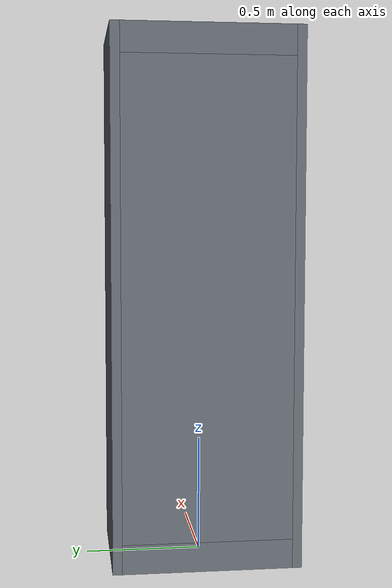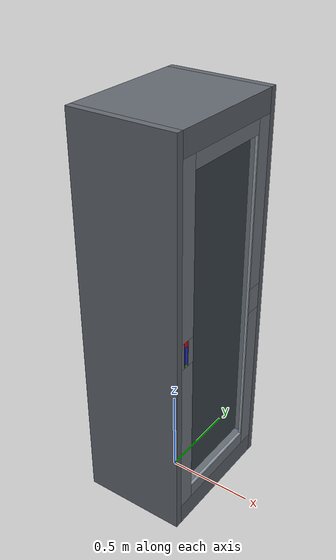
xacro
<?xml version="1.0"?>
<robot xmlns:xacro="http://www.ros.org/wiki/xacro" name="electrical_cabinet">
  <!-- The transparent URDF is the canonical geometry and physics template. -->
  <xacro:arg name="world_fixed" default="false"/>
  <xacro:include filename="electrical_cabinet.urdf"/>
  <xacro:if value="$(arg world_fixed)">
    <link name="cabinet_world"/>
    <joint name="electrical_cabinet_fixed_to_world" type="fixed">
      <parent link="cabinet_world"/>
      <child link="cabinet_base_link"/>
      <origin xyz="0 0 0" rpy="0 0 0"/>
    </joint>
  </xacro:if>
</robot>

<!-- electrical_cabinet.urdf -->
<robot name="electrical_cabinet">
  <link name="cabinet_base_link">
    <inertial>
      <origin rpy="0 0 0" xyz="0 0 0" />
      <mass value="80.0" />
      <inertia ixx="38.31733333333332" ixy="0.0" ixz="0.0" iyy="36.450666666666656" iyz="0.0" izz="6.666666666666667" />
    </inertial>
    <visual name="left_side_visual">
      <origin rpy="0 0 0" xyz="0 -0.38 1.13" />
      <geometry>
        <box size="0.6 0.040000000000000036 2.26" />
      </geometry>
      <material name="left_side_material">
        <color rgba="0.38 0.40 0.43 1.0" />
      </material>
    </visual>
    <collision name="left_side_collision">
      <origin rpy="0 0 0" xyz="0 -0.38 1.13" />
      <geometry>
        <box size="0.6 0.040000000000000036 2.26" />
      </geometry>
    </collision>
    <visual name="right_side_visual">
      <origin rpy="0 0 0" xyz="0 0.38 1.13" />
      <geometry>
        <box size="0.6 0.040000000000000036 2.26" />
      </geometry>
      <material name="right_side_material">
        <color rgba="0.38 0.40 0.43 1.0" />
      </material>
    </visual>
    <collision name="right_side_collision">
      <origin rpy="0 0 0" xyz="0 0.38 1.13" />
      <geometry>
        <box size="0.6 0.040000000000000036 2.26" />
      </geometry>
    </collision>
    <visual name="bottom_frame_visual">
      <origin rpy="0 0 0" xyz="0 0 0.0625" />
      <geometry>
        <box size="0.6 0.72 0.125" />
      </geometry>
      <material name="bottom_frame_material">
        <color rgba="0.38 0.40 0.43 1.0" />
      </material>
    </visual>
    <collision name="bottom_frame_collision">
      <origin rpy="0 0 0" xyz="0 0 0.0625" />
      <geometry>
        <box size="0.6 0.72 0.125" />
      </geometry>
    </collision>
    <visual name="top_frame_visual">
      <origin rpy="0 0 0" xyz="0 0 2.1975" />
      <geometry>
        <box size="0.6 0.72 0.125" />
      </geometry>
      <material name="top_frame_material">
        <color rgba="0.38 0.40 0.43 1.0" />
      </material>
    </visual>
    <collision name="top_frame_collision">
      <origin rpy="0 0 0" xyz="0 0 2.1975" />
      <geometry>
        <box size="0.6 0.72 0.125" />
      </geometry>
    </collision>
    <visual name="rear_wall_visual">
      <origin rpy="0 0 0" xyz="-0.29 0 1.13" />
      <geometry>
        <box size="0.02 0.72 2.01" />
      </geometry>
      <material name="rear_wall_material">
        <color rgba="0.38 0.40 0.43 1.0" />
      </material>
    </visual>
    <collision name="rear_wall_collision">
      <origin rpy="0 0 0" xyz="-0.29 0 1.13" />
      <geometry>
        <box size="0.02 0.72 2.01" />
      </geometry>
    </collision>
    <visual name="door_recess_back_visual">
      <origin rpy="0 0 0" xyz="0.18999999999999997 0 1.13" />
      <geometry>
        <box size="0.02 0.72 2.01" />
      </geometry>
      <material name="door_recess_back_material">
        <color rgba="0.12 0.14 0.16 1.0" />
      </material>
    </visual>
    <collision name="door_recess_back_collision">
      <origin rpy="0 0 0" xyz="0.18999999999999997 0 1.13" />
      <geometry>
        <box size="0.02 0.72 2.01" />
      </geometry>
    </collision>
  </link>
  <link name="door_hinge_link">
    <inertial>
      <origin rpy="0 0 0" xyz="0 0 0" />
      <mass value="0.01" />
      <inertia ixx="1.666666666666667e-07" ixy="0.0" ixz="0.0" iyy="1.666666666666667e-07" iyz="0.0" izz="1.666666666666667e-07" />
    </inertial>
  </link>
  <link name="door_link">
    <inertial>
      <origin rpy="0 0 0" xyz="0 0 0" />
      <mass value="12.0" />
      <inertia ixx="4.558499999999999" ixy="0.0" ixz="0.0" iyy="4.040499999999999" iyz="0.0" izz="0.5187999999999999" />
    </inertial>
    <visual>
      <origin rpy="0 0 0" xyz="-0.0025 -0.3125 0" />
      <geometry>
        <box size="0.015 0.095 2.01" />
      </geometry>
      <material name="door_core_material">
        <color rgba="0.58 0.60 0.63 1.0" />
      </material>
    </visual>
    <visual>
      <origin rpy="0 0 0" xyz="-0.0025 0.3125 0" />
      <geometry>
        <box size="0.015 0.095 2.01" />
      </geometry>
      <material name="door_core_material">
        <color rgba="0.58 0.60 0.63 1.0" />
      </material>
    </visual>
    <visual>
      <origin rpy="0 0 0" xyz="-0.0025 0 -0.9665" />
      <geometry>
        <box size="0.015 0.53 0.077" />
      </geometry>
      <material name="door_core_material">
        <color rgba="0.58 0.60 0.63 1.0" />
      </material>
    </visual>
    <visual>
      <origin rpy="0 0 0" xyz="-0.0025 0 0.9665" />
      <geometry>
        <box size="0.015 0.53 0.077" />
      </geometry>
      <material name="door_core_material">
        <color rgba="0.58 0.60 0.63 1.0" />
      </material>
    </visual>
    <visual>
      <origin rpy="0 0 0" xyz="0.0075 -0.3125 -0.54" />
      <geometry>
        <box size="0.005 0.095 0.93" />
      </geometry>
      <material name="door_skin_bottom_material">
        <color rgba="0.47 0.49 0.52 1.0" />
      </material>
    </visual>
    <visual>
      <origin rpy="0 0 0" xyz="0.0075 0.3125 -0.54" />
      <geometry>
        <box size="0.005 0.095 0.93" />
      </geometry>
      <material name="door_skin_bottom_material">
        <color rgba="0.47 0.49 0.52 1.0" />
      </material>
    </visual>
    <visual>
      <origin rpy="0 0 0" xyz="0.0075 0 -0.9665" />
      <geometry>
        <box size="0.005 0.53 0.077" />
      </geometry>
      <material name="door_skin_bottom_material">
        <color rgba="0.47 0.49 0.52 1.0" />
      </material>
    </visual>
    <visual>
      <origin rpy="0 0 0" xyz="0.0075 -0.3125 0.54" />
      <geometry>
        <box size="0.005 0.095 0.93" />
      </geometry>
      <material name="door_skin_top_material">
        <color rgba="0.47 0.49 0.52 1.0" />
      </material>
    </visual>
    <visual>
      <origin rpy="0 0 0" xyz="0.0075 0.3125 0.54" />
      <geometry>
        <box size="0.005 0.095 0.93" />
      </geometry>
      <material name="door_skin_top_material">
        <color rgba="0.47 0.49 0.52 1.0" />
      </material>
    </visual>
    <visual>
      <origin rpy="0 0 0" xyz="0.0075 0 0.9665" />
      <geometry>
        <box size="0.005 0.53 0.077" />
      </geometry>
      <material name="door_skin_top_material">
        <color rgba="0.47 0.49 0.52 1.0" />
      </material>
    </visual>
    <visual>
      <origin rpy="0 0 0" xyz="0.0075 -0.35 0" />
      <geometry>
        <box size="0.005 0.02 0.15" />
      </geometry>
      <material name="door_skin_left_material">
        <color rgba="0.47 0.49 0.52 1.0" />
      </material>
    </visual>
    <visual>
      <origin rpy="0 0 0" xyz="0.0075 -0.285 0" />
      <geometry>
        <box size="0.005 0.04 0.15" />
      </geometry>
      <material name="door_skin_right_material">
        <color rgba="0.47 0.49 0.52 1.0" />
      </material>
    </visual>
    <visual>
      <origin rpy="0 0 0" xyz="0.0075 0.3125 0" />
      <geometry>
        <box size="0.005 0.095 0.15" />
      </geometry>
      <material name="door_skin_right_material">
        <color rgba="0.47 0.49 0.52 1.0" />
      </material>
    </visual>
  </link>
  <joint name="door_hinge_joint" type="revolute">
    <parent link="cabinet_base_link" />
    <child link="door_hinge_link" />
    <origin rpy="0 0 0" xyz="0.29 0.36 1.13" />
    <axis xyz="0 0 1" />
    <limit effort="100" lower="-0.0001" upper="1.57079632679" velocity="1.0" />
    <dynamics damping="1.0" friction="0.1" />
  </joint>
  <joint name="door_mount_joint" type="fixed">
    <parent link="door_hinge_link" />
    <child link="door_link" />
    <origin rpy="0 0 0" xyz="0 -0.36 0" />
  </joint>
  <link name="lock_cavity_link">
    <inertial>
      <origin rpy="0 0 0" xyz="0 0 0" />
      <mass value="0.05" />
      <inertia ixx="6.166666666666667e-05" ixy="0.0" ixz="0.0" iyy="6.0004166666666664e-05" iyz="0.0" izz="1.6708333333333336e-06" />
    </inertial>
    <visual name="lock_cavity_back_visual">
      <origin rpy="0 0 0" xyz="0 0 0" />
      <geometry>
        <box size="0.001 0.02 0.12" />
      </geometry>
      <material name="lock_cavity_back_material">
        <color rgba="0.12 0.14 0.16 1.0" />
      </material>
    </visual>
  </link>
  <joint name="lock_cavity_mount_joint" type="fixed">
    <parent link="door_link" />
    <child link="lock_cavity_link" />
    <origin rpy="0 0 0" xyz="0.0055 -0.32249999999999995 -0.015" />
  </joint>
  <link name="lock_frame_link">
    <inertial>
      <origin rpy="0 0 0" xyz="0 0 0" />
      <mass value="0.15" />
      <inertia ixx="0.0002965625" ixy="0.0" ixz="0.0" iyy="0.00028136249999999996" iyz="0.0" izz="1.5425e-05" />
    </inertial>
    <visual name="lock_frame_left_visual">
      <origin rpy="0 0 0" xyz="0 -0.013750000000000002 0" />
      <geometry>
        <box size="0.003 0.0075000000000000015 0.15" />
      </geometry>
      <material name="lock_frame_left_material">
        <color rgba="0.95 0.05 0.05 1.0" />
      </material>
    </visual>
    <visual name="lock_frame_right_visual">
      <origin rpy="0 0 0" xyz="0 0.013750000000000002 0" />
      <geometry>
        <box size="0.003 0.0075000000000000015 0.15" />
      </geometry>
      <material name="lock_frame_right_material">
        <color rgba="0.95 0.05 0.05 1.0" />
      </material>
    </visual>
    <visual name="lock_frame_top_visual">
      <origin rpy="0 0 0" xyz="0 0 0.06" />
      <geometry>
        <box size="0.003 0.02 0.03" />
      </geometry>
      <material name="lock_frame_top_material">
        <color rgba="0.95 0.05 0.05 1.0" />
      </material>
    </visual>
  </link>
  <joint name="lock_frame_mount_joint" type="fixed">
    <parent link="door_link" />
    <child link="lock_frame_link" />
    <origin rpy="0 0 0" xyz="0.0065 -0.32249999999999995 0" />
  </joint>
  <link name="lock_button_link">
    <inertial>
      <origin rpy="0 0 0" xyz="0.003 0 0" />
      <mass value="0.03" />
      <inertia ixx="1.5624999999999999e-06" ixy="0.0" ixz="0.0" iyy="6.25e-07" iyz="0.0" izz="1.0625e-06" />
    </inertial>
    <visual name="lock_button_visual">
      <origin rpy="0 0 0" xyz="0.003 0 0" />
      <geometry>
        <box size="0.005 0.02 0.015" />
      </geometry>
      <material name="lock_button_material">
        <color rgba="0.20 0.85 0.05 1.0" />
      </material>
    </visual>
  </link>
  <joint name="button_press_joint" type="revolute">
    <parent link="door_link" />
    <child link="lock_button_link" />
    <origin rpy="0 0 0" xyz="0.0045 -0.32249999999999995 -0.0675" />
    <axis xyz="0 0 1" />
    <limit effort="30" lower="-0.0001" upper="3.14159265359" velocity="8.0" />
    <dynamics damping="1.0" friction="0.1" />
  </joint>
  <link name="button_contact_sensor_link">
    <inertial>
      <origin rpy="0 0 0" xyz="0 0 0" />
      <mass value="0.001" />
      <inertia ixx="5.208333333333334e-08" ixy="0.0" ixz="0.0" iyy="1.8833333333333333e-08" iyz="0.0" izz="3.341666666666667e-08" />
    </inertial>
    <collision name="button_contact_pad_collision">
      <origin rpy="0 0 0" xyz="0 0 0" />
      <geometry>
        <box size="0.001 0.02 0.015" />
      </geometry>
    </collision>
  </link>
  <joint name="button_contact_sensor_mount_joint" type="fixed">
    <parent link="door_link" />
    <child link="button_contact_sensor_link" />
    <origin rpy="0 0 0" xyz="0.0235 -0.32249999999999995 -0.0675" />
  </joint>
  <link name="handle_pop_link">
    <inertial>
      <origin rpy="0 0 0" xyz="0 0 0" />
      <mass value="0.01" />
      <inertia ixx="6.666666666666667e-09" ixy="0.0" ixz="0.0" iyy="6.666666666666667e-09" iyz="0.0" izz="6.666666666666667e-09" />
    </inertial>
  </link>
  <joint name="handle_turn_joint" type="revolute">
    <parent link="door_link" />
    <child link="handle_pop_link" />
    <origin rpy="0 0 0" xyz="0.0075 -0.32249999999999995 0.045" />
    <axis xyz="1 0 0" />
    <limit effort="30" lower="-0.0001" upper="1.57079632679" velocity="2.0" />
    <dynamics damping="0.5" friction="0.05" />
  </joint>
  <link name="door_handle_link">
    <inertial>
      <origin rpy="0 0 0" xyz="0 0 -0.0525" />
      <mass value="0.1" />
      <inertia ixx="9.520833333333332e-05" ixy="0.0" ixz="0.0" iyy="9.208333333333333e-05" iyz="0.0" izz="3.541666666666667e-06" />
    </inertial>
    <visual name="door_handle_visual">
      <origin rpy="0 0 0" xyz="0 0 -0.0525" />
      <geometry>
        <box size="0.005 0.02 0.105" />
      </geometry>
      <material name="door_handle_material">
        <color rgba="0.02 0.25 0.95 1.0" />
      </material>
    </visual>
  </link>
  <joint name="handle_pop_joint" type="revolute">
    <parent link="handle_pop_link" />
    <child link="door_handle_link" />
    <origin rpy="0 0 0" xyz="0 0 0" />
    <axis xyz="0 1 0" />
    <limit effort="30" lower="-1.0471975512" upper="0.0001" velocity="2.0" />
    <dynamics damping="0.5" friction="0.05" />
  </joint>
  <link name="door_handle_grasp_frame" />
  <joint name="door_handle_grasp_frame_joint" type="fixed">
    <parent link="door_handle_link" />
    <child link="door_handle_grasp_frame" />
    <origin rpy="0 0 0" xyz="0 0 0" />
  </joint>
  <gazebo>
    <plugin filename="libgazebo_ros_control.so" name="gazebo_ros_control">
      <robotNamespace>/electrical_cabinet</robotNamespace>
      <robotSimType>gazebo_ros_control/DefaultRobotHWSim</robotSimType>
      <legacyModeNS>true</legacyModeNS>
    </plugin>
    <plugin filename="libelectrical_cabinet_kinematic_plugin.so" name="electrical_cabinet_kinematic_plugin" />
  </gazebo>
  <gazebo reference="cabinet_base_link">
    <gravity>false</gravity>
    <selfCollide>false</selfCollide>
    <material>Gazebo/DarkGrey</material>
  </gazebo>
  <gazebo reference="door_link">
    <gravity>false</gravity>
    <selfCollide>false</selfCollide>
    <material>Gazebo/Grey</material>
  </gazebo>
  <gazebo reference="door_hinge_link">
    <gravity>false</gravity>
    <selfCollide>false</selfCollide>
  </gazebo>
  <gazebo reference="lock_cavity_link">
    <gravity>false</gravity>
    <selfCollide>false</selfCollide>
    <material>Gazebo/Black</material>
  </gazebo>
  <gazebo reference="lock_frame_link">
    <gravity>false</gravity>
    <selfCollide>false</selfCollide>
    <material>Gazebo/Red</material>
  </gazebo>
  <gazebo reference="handle_pop_link">
    <gravity>false</gravity>
    <selfCollide>false</selfCollide>
  </gazebo>
  <gazebo reference="door_handle_link">
    <gravity>false</gravity>
    <selfCollide>false</selfCollide>
    <material>Gazebo/Blue</material>
  </gazebo>
  <gazebo reference="lock_button_link">
    <gravity>false</gravity>
    <selfCollide>false</selfCollide>
    <material>Gazebo/Green</material>
  </gazebo>
  <gazebo reference="button_contact_sensor_link">
    <gravity>false</gravity>
    <selfCollide>false</selfCollide>
    <sensor name="button_contact_sensor" type="contact">
      <always_on>true</always_on>
      <update_rate>100.0</update_rate>
      <contact>
        <collision>button_contact_pad_collision</collision>
      </contact>
      <plugin filename="libgazebo_ros_bumper.so" name="button_contact_bumper">
        <alwaysOn>true</alwaysOn>
        <updateRate>100.0</updateRate>
        <robotNamespace>/electrical_cabinet</robotNamespace>
        <frameName>lock_button_link</frameName>
        <bumperTopicName>button_contacts</bumperTopicName>
      </plugin>
    </sensor>
  </gazebo>
  <transmission name="door_hinge_joint_transmission">
    <type>transmission_interface/SimpleTransmission</type>
    <joint name="door_hinge_joint">
      <hardwareInterface>hardware_interface/PositionJointInterface</hardwareInterface>
    </joint>
    <actuator name="door_hinge_motor">
      <mechanicalReduction>1</mechanicalReduction>
    </actuator>
  </transmission>
  <transmission name="button_press_joint_transmission">
    <type>transmission_interface/SimpleTransmission</type>
    <joint name="button_press_joint">
      <hardwareInterface>hardware_interface/PositionJointInterface</hardwareInterface>
    </joint>
    <actuator name="button_press_motor">
      <mechanicalReduction>1</mechanicalReduction>
    </actuator>
  </transmission>
  <transmission name="handle_pop_joint_transmission">
    <type>transmission_interface/SimpleTransmission</type>
    <joint name="handle_pop_joint">
      <hardwareInterface>hardware_interface/PositionJointInterface</hardwareInterface>
    </joint>
    <actuator name="handle_pop_motor">
      <mechanicalReduction>1</mechanicalReduction>
    </actuator>
  </transmission>
  <transmission name="handle_turn_joint_transmission">
    <type>transmission_interface/SimpleTransmission</type>
    <joint name="handle_turn_joint">
      <hardwareInterface>hardware_interface/PositionJointInterface</hardwareInterface>
    </joint>
    <actuator name="handle_turn_motor">
      <mechanicalReduction>1</mechanicalReduction>
    </actuator>
  </transmission>
  <link name="door_glass_visual_link">
    <visual>
      <origin xyz="0 0 0" rpy="0 0 0" />
      <geometry>
        <box size="0.02 0.53 1.856" />
      </geometry>
      <material name="door_glass">
        <color rgba="0.82 0.93 0.98 0.18" />
      </material>
    </visual>
  </link>
  <joint name="door_glass_visual_mount" type="fixed">
    <parent link="door_link" />
    <child link="door_glass_visual_link" />
  </joint>
  <gazebo reference="door_glass_visual_link">
    <visual>
      <transparency>0.82</transparency>
      <cast_shadows>false</cast_shadows>
      <material>
        <ambient>0.82 0.93 0.98 0.18</ambient>
        <diffuse>0.82 0.93 0.98 0.18</diffuse>
        <specular>0.5 0.5 0.5 1</specular>
      </material>
    </visual>
  </gazebo>
</robot>
